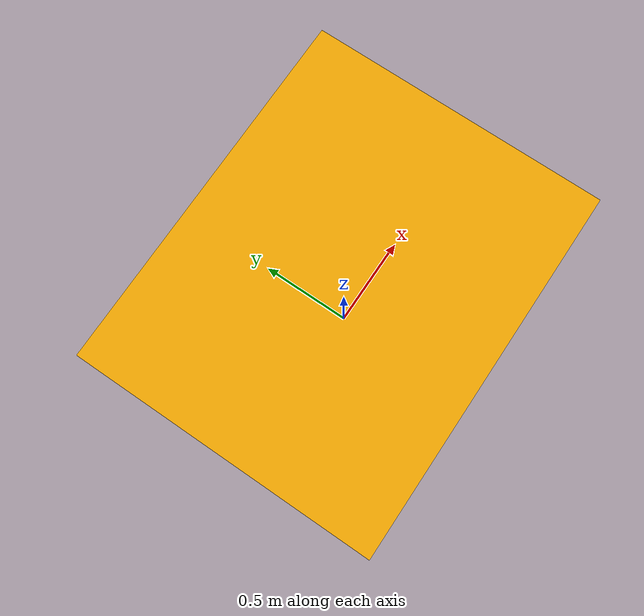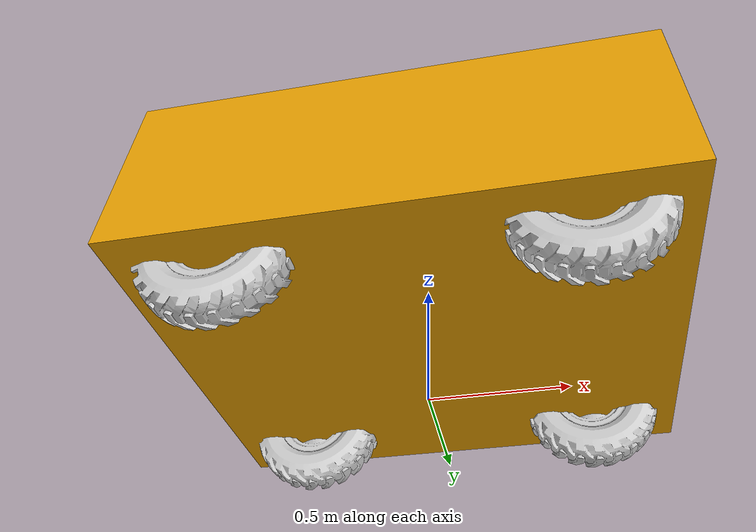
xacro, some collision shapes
<?xml version="1.0" ?>
<robot name="amiga" xmlns:xacro="http://www.ros.org/wiki/xacro">

  <!-- ==================== Robot Dimensions ==================== -->
  <xacro:property name="base_length" value="1.88"/>
  <xacro:property name="base_height" value="0.7"/>
  <xacro:property name="base_width"  value="1.52"/>
  <xacro:property name="wheel_radius" value="0.272"/>
  <xacro:property name="wheel_width"  value="0.162"/>

  <!-- ==================== Inertia Macros ==================== -->
  <xacro:macro name="box_inertia" params="m x y z o_xyz o_rpy">
    <inertial>
      <origin xyz="${o_xyz}" rpy="${o_rpy}"/>
      <mass value="${m}"/>
      <inertia ixx="${m*(y*y+z*z)/12}" ixy="0" ixz="0"
               iyy="${m*(x*x+z*z)/12}" iyz="0"
               izz="${m*(x*x+y*y)/12}"/>
    </inertial>
  </xacro:macro>

  <xacro:macro name="cylinder_inertia" params="m r h o_xyz o_rpy">
    <inertial>
      <origin xyz="${o_xyz}" rpy="${o_rpy}"/>
      <mass value="${m}"/>
      <inertia ixx="${m*(3*r*r+h*h)/12}" ixy="0" ixz="0"
               iyy="${m*(3*r*r+h*h)/12}" iyz="0"
               izz="${m*r*r/2}"/>
    </inertial>
  </xacro:macro>

  <!-- ==================== Base Link ==================== -->
  <link name="base_link">
    <visual>
      <geometry>
        <mesh filename="package://amiga_description/meshes/base_robot_amiga.dae" scale="1 1 1"/>
      </geometry>
      <origin rpy="0 0 ${pi}" xyz="0 0 0"/>
    </visual>
    <xacro:box_inertia m="100" x="${base_length}" y="${base_width}" z="${base_height}"
                       o_xyz="0 0 ${base_height/2}" o_rpy="0 0 0"/>
    <collision>
      <origin rpy="0 0 0" xyz="0 0 0.55"/>
      <geometry>
        <box size="${base_length} ${base_width} ${base_height}"/>
      </geometry>
    </collision>
  </link>

  <!-- ==================== Wheels ==================== -->
  <xacro:macro name="wheel" params="name parent xyz rpy axis">
    <link name="${name}">
      <visual>
        <geometry>
          <mesh filename="package://amiga_description/meshes/wheel.dae" scale="1 1 1"/>
        </geometry>
        <origin rpy="${rpy}" xyz="0 0 0"/>
      </visual>
      <xacro:cylinder_inertia m="10" r="${wheel_radius}" h="${wheel_width}"
                               o_xyz="0 0 0" o_rpy="${pi/2} 0 0"/>
      <collision>
        <geometry>
          <cylinder length="${wheel_width}" radius="${wheel_radius}"/>
        </geometry>
        <origin rpy="${pi/2} 0 0" xyz="0 0 0"/>
      </collision>
    </link>
    <joint name="${name}_joint" type="continuous">
      <parent link="${parent}"/>
      <child link="${name}"/>
      <origin rpy="0 0 0" xyz="${xyz}"/>
      <axis xyz="${axis}"/>
    </joint>
  </xacro:macro>

  <xacro:wheel name="front_left_wheel"  parent="base_link" xyz=" 0.60468  0.57165 0.27" rpy="0 0 ${pi}" axis="0 1 0"/>
  <xacro:wheel name="front_right_wheel" parent="base_link" xyz=" 0.60468 -0.57165 0.27" rpy="0 0 0"     axis="0 1 0"/>
  <xacro:wheel name="rear_left_wheel"   parent="base_link" xyz="-0.60468  0.57165 0.27" rpy="0 0 ${pi}" axis="0 1 0"/>
  <xacro:wheel name="rear_right_wheel"  parent="base_link" xyz="-0.60468 -0.57165 0.27" rpy="0 0 0"     axis="0 1 0"/>

  <!-- ==================== IMU Link ==================== -->
  <link name="imu_link"/>
  <joint name="imu_joint" type="fixed">
    <parent link="base_link"/>
    <child link="imu_link"/>
    <origin rpy="0 0 0" xyz="0 0 0.3"/>
  </joint>

  <!-- ==================== GPS Link ==================== -->
  <link name="gps_link"/>
  <joint name="gps_joint" type="fixed">
    <parent link="base_link"/>
    <child link="gps_link"/>
    <origin rpy="0 0 0" xyz="0 0 0.8"/>
  </joint>

  <!-- ==================== Laser Link ==================== -->
  <link name="laser_link"/>
  <joint name="laser_joint" type="fixed">
    <parent link="base_link"/>
    <child link="laser_link"/>
    <!-- LiDAR fiziksel olarak 180° ters monte edilmiş; sensörün 0° yönü
         robotun arkasını gösteriyordu, burada düzeltildi. -->
    <origin rpy="0 0 ${pi}" xyz="0.7 0 0.4"/>
  </joint>

</robot>
